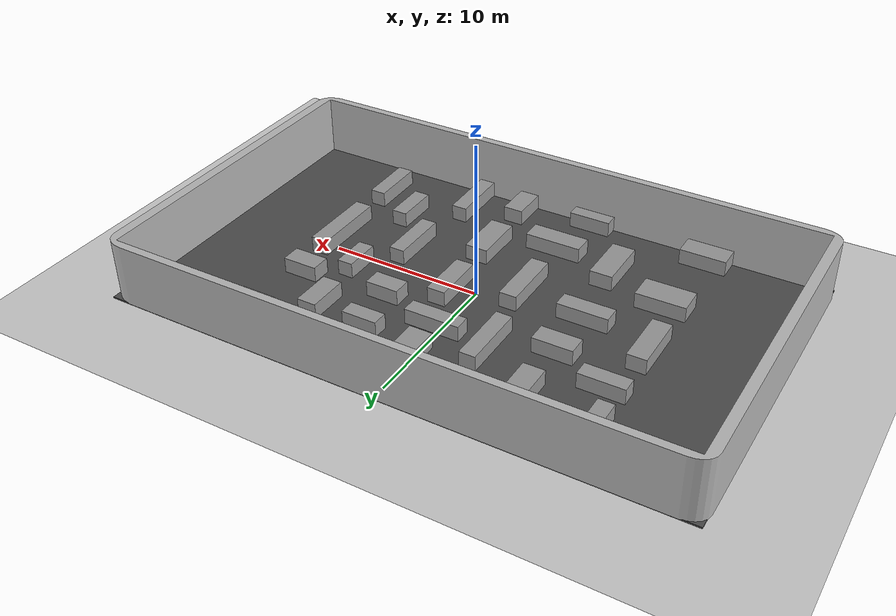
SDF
<sdf version="1.6">
 <world name="default">
  <light name="sun" type="directional">
   <cast_shadows>0</cast_shadows>
   <pose>0 0 100 0 -0 0</pose>
   <diffuse>0.8 0.8 0.8 1</diffuse>
   <specular>0.1 0.1 0.1 1</specular>
   <attenuation>
    <range>1000</range>
    <constant>0.9</constant>
    <linear>0.01</linear>
    <quadratic>0.001</quadratic>
   </attenuation>
   <direction>0 0 -1</direction>
  </light>
  <model name="ground_plane">
   <static>1</static>
   <link name="link">
    <collision name="collision">
     <geometry><plane><normal>0 0 1</normal><size>100 100</size></plane></geometry>
     <surface><friction><ode><mu>100</mu><mu2>50</mu2></ode></friction></surface>
    </collision>
    <visual name="visual">
     <cast_shadows>0</cast_shadows>
     <geometry><plane><normal>0 0 1</normal><size>100 100</size></plane></geometry>
     <material>
      <script><uri>file://media/materials/scripts/gazebo.material</uri><name>Gazebo/Grey</name></script>
     </material>
    </visual>
   </link>
  </model>
  <gravity>0 0 -9.8</gravity>
  <magnetic_field>6e-06 2.3e-05 -4.2e-05</magnetic_field>
  <atmosphere type="adiabatic"/>
  <physics name="default_physics" default="0" type="ode">
   <max_step_size>0.001</max_step_size>
   <real_time_factor>1</real_time_factor>
   <real_time_update_rate>1000</real_time_update_rate>
  </physics>
  <scene><ambient>0.4 0.4 0.4 1</ambient><background>0.7 0.7 0.7 1</background><shadows>1</shadows></scene>
  <spherical_coordinates>
   <surface_model>EARTH_WGS84</surface_model>
   <latitude_deg>0</latitude_deg>
   <longitude_deg>0</longitude_deg>
   <elevation>0</elevation>
   <heading_deg>0</heading_deg>
  </spherical_coordinates>
  <model name="asphalt_plane">
   <static>1</static>
   <link name="link">
    <collision name="collision"><geometry><box><size>37 22 0.1</size></box></geometry></collision>
    <visual name="visual">
     <cast_shadows>0</cast_shadows>
     <geometry><box><size>37 22 0.1</size></box></geometry>
     <material>
      <script>
       <uri>model://asphalt_plane/materials/scripts</uri>
       <uri>model://asphalt_plane/materials/textures</uri>
       <name>vrc/asphalt</name>
      </script>
     </material>
    </visual>
   </link>
   <pose>0.054655 0.000182 0 0 -0 0</pose>
  </model>
  <model name="yard_square">
   <pose>0 0 0 1.5708 -0 1.5708</pose>
   <static>1</static>
   <link name="body">
    <collision name="collision">
     <geometry><mesh><uri>model://yard_square/yard_square.stl</uri><scale>0.1 0.1 0.13</scale></mesh></geometry>
    </collision>
    <visual name="visual">
     <geometry><mesh><uri>model://yard_square/yard_square.stl</uri><scale>0.1 0.1 0.13</scale></mesh></geometry>
    </visual>
   </link>
  </model>
  <audio><device>default</device></audio>
  <model name="unit_box_0">
   <pose>-2.32374 -1.66092 0.550002 -8e-06 -0 4.5e-05</pose>
   <static>1</static>
   <link name="link">
    <inertial>
     <mass>1</mass>
     <inertia>
      <ixx>0.166667</ixx>
      <ixy>0</ixy>
      <ixz>0</ixz>
      <iyy>0.166667</iyy>
      <iyz>0</iyz>
      <izz>0.166667</izz>
     </inertia>
    </inertial>
    <collision name="collision"><geometry><box><size>1.12328 4.13675 1</size></box></geometry></collision>
    <visual name="visual">
     <geometry><box><size>1.12328 4.13675 1</size></box></geometry>
     <material>
      <script><name>Gazebo/Grey</name><uri>file://media/materials/scripts/gazebo.material</uri></script>
     </material>
    </visual>
   </link>
  </model>
  <model name="unit_box_2">
   <pose>0.26129 7.45255 0.549996 -7e-06 -0 0.001667</pose>
   <static>1</static>
   <link name="link">
    <inertial>
     <mass>1</mass>
     <inertia>
      <ixx>0.166667</ixx>
      <ixy>0</ixy>
      <ixz>0</ixz>
      <iyy>0.166667</iyy>
      <iyz>0</iyz>
      <izz>0.166667</izz>
     </inertia>
    </inertial>
    <collision name="collision"><geometry><box><size>1.4552 3.44615 1</size></box></geometry></collision>
    <visual name="visual">
     <geometry><box><size>1.4552 3.44615 1</size></box></geometry>
     <material>
      <script><name>Gazebo/Grey</name><uri>file://media/materials/scripts/gazebo.material</uri></script>
     </material>
    </visual>
   </link>
  </model>
  <model name="unit_box_3">
   <pose>3.96739 9.65811 0.549227 0 0.000383 -0.000473</pose>
   <static>1</static>
   <link name="link">
    <inertial>
     <mass>1</mass>
     <inertia>
      <ixx>0.166667</ixx>
      <ixy>0</ixy>
      <ixz>0</ixz>
      <iyy>0.166667</iyy>
      <iyz>0</iyz>
      <izz>0.166667</izz>
     </inertia>
    </inertial>
    <collision name="collision"><geometry><box><size>1.18061 2.38675 1</size></box></geometry></collision>
    <visual name="visual">
     <geometry><box><size>1.18061 2.38675 1</size></box></geometry>
     <material>
      <script><name>Gazebo/Grey</name><uri>file://media/materials/scripts/gazebo.material</uri></script>
     </material>
    </visual>
   </link>
  </model>
  <model name="unit_box_4">
   <pose>-10.2534 -4.3352 0.544487 0 -0 0.009696</pose>
   <static>1</static>
   <link name="link">
    <inertial>
     <mass>1</mass>
     <inertia>
      <ixx>0.166667</ixx>
      <ixy>0</ixy>
      <ixz>0</ixz>
      <iyy>0.166667</iyy>
      <iyz>0</iyz>
      <izz>0.166667</izz>
     </inertia>
    </inertial>
    <collision name="collision"><geometry><box><size>3.1937 1.73528 1</size></box></geometry></collision>
    <visual name="visual">
     <geometry><box><size>3.1937 1.73528 1</size></box></geometry>
     <material>
      <script><name>Gazebo/Grey</name><uri>file://media/materials/scripts/gazebo.material</uri></script>
     </material>
    </visual>
   </link>
  </model>
  <model name="unit_box_5">
   <pose>-2.02881 -6.62329 0.549982 0 1.7e-05 -1.57091</pose>
   <static>1</static>
   <link name="link">
    <inertial>
     <mass>1</mass>
     <inertia>
      <ixx>0.166667</ixx>
      <ixy>0</ixy>
      <ixz>0</ixz>
      <iyy>0.166667</iyy>
      <iyz>0</iyz>
      <izz>0.166667</izz>
     </inertia>
    </inertial>
    <collision name="collision"><geometry><box><size>1.31392 3.64155 1</size></box></geometry></collision>
    <visual name="visual">
     <geometry><box><size>1.31392 3.64155 1</size></box></geometry>
     <material>
      <script><name>Gazebo/Grey</name><uri>file://media/materials/scripts/gazebo.material</uri></script>
     </material>
    </visual>
   </link>
  </model>
  <model name="unit_box_9">
   <pose>0.354728 4.0596 0.549886 0 -7.9e-05 0.003843</pose>
   <static>1</static>
   <link name="link">
    <inertial>
     <mass>1</mass>
     <inertia>
      <ixx>0.166667</ixx>
      <ixy>0</ixy>
      <ixz>0</ixz>
      <iyy>0.166667</iyy>
      <iyz>0</iyz>
      <izz>0.166667</izz>
     </inertia>
    </inertial>
    <collision name="collision"><geometry><box><size>3.55853 1 1</size></box></geometry></collision>
    <visual name="visual">
     <geometry><box><size>3.55853 1 1</size></box></geometry>
     <material>
      <script><name>Gazebo/Grey</name><uri>file://media/materials/scripts/gazebo.material</uri></script>
     </material>
    </visual>
   </link>
  </model>
  <model name="unit_box_10">
   <pose>-6.78448 -0.825463 0.547399 -0.000838 0 0</pose>
   <static>1</static>
   <link name="link">
    <inertial>
     <mass>1</mass>
     <inertia>
      <ixx>0.166667</ixx>
      <ixy>0</ixy>
      <ixz>0</ixz>
      <iyy>0.166667</iyy>
      <iyz>0</iyz>
      <izz>0.166667</izz>
     </inertia>
    </inertial>
    <collision name="collision"><geometry><box><size>3.27683 1.11673 1</size></box></geometry></collision>
    <visual name="visual">
     <geometry><box><size>3.27683 1.11673 1</size></box></geometry>
     <material>
      <script><name>Gazebo/Grey</name><uri>file://media/materials/scripts/gazebo.material</uri></script>
     </material>
    </visual>
   </link>
  </model>
  <model name="unit_box_1">
   <pose>10.7176 -1.45544 0.550023 6e-06 -0 0.000254</pose>
   <static>1</static>
   <link name="link">
    <inertial>
     <mass>1</mass>
     <inertia>
      <ixx>0.166667</ixx>
      <ixy>0</ixy>
      <ixz>0</ixz>
      <iyy>0.166667</iyy>
      <iyz>0</iyz>
      <izz>0.166667</izz>
     </inertia>
    </inertial>
    <collision name="collision"><geometry><box><size>1.12056 4.92766 1</size></box></geometry></collision>
    <visual name="visual">
     <geometry><box><size>1.12056 4.92766 1</size></box></geometry>
     <material>
      <script><name>Gazebo/Grey</name><uri>file://media/materials/scripts/gazebo.material</uri></script>
     </material>
    </visual>
   </link>
  </model>
  <model name="unit_box_6">
   <pose>-3.06762 4.26919 0.549214 -0.00038 0 7.5e-05</pose>
   <static>1</static>
   <link name="link">
    <inertial>
     <mass>1</mass>
     <inertia>
      <ixx>0.166667</ixx>
      <ixy>0</ixy>
      <ixz>0</ixz>
      <iyy>0.166667</iyy>
      <iyz>0</iyz>
      <izz>0.166667</izz>
     </inertia>
    </inertial>
    <collision name="collision"><geometry><box><size>1.02781 4.24453 1</size></box></geometry></collision>
    <visual name="visual">
     <geometry><box><size>1.02781 4.24453 1</size></box></geometry>
     <material>
      <script><name>Gazebo/Grey</name><uri>file://media/materials/scripts/gazebo.material</uri></script>
     </material>
    </visual>
   </link>
  </model>
  <model name="unit_box_8">
   <pose>-6.12791 -5.95067 0.549084 0.00039 -0 0</pose>
   <static>1</static>
   <link name="link">
    <inertial>
     <mass>1</mass>
     <inertia>
      <ixx>0.166667</ixx>
      <ixy>0</ixy>
      <ixz>0</ixz>
      <iyy>0.166667</iyy>
      <iyz>0</iyz>
      <izz>0.166667</izz>
     </inertia>
    </inertial>
    <collision name="collision"><geometry><box><size>1.46752 3.42649 1</size></box></geometry></collision>
    <visual name="visual">
     <geometry><box><size>1.46752 3.42649 1</size></box></geometry>
     <material>
      <script><name>Gazebo/Grey</name><uri>file://media/materials/scripts/gazebo.material</uri></script>
     </material>
    </visual>
   </link>
  </model>
  <model name="unit_box_11">
   <pose>1.54344 0.372559 0.55279 0.00034 -0 0</pose>
   <static>1</static>
   <link name="link">
    <inertial>
     <mass>1</mass>
     <inertia>
      <ixx>0.166667</ixx>
      <ixy>0</ixy>
      <ixz>0</ixz>
      <iyy>0.166667</iyy>
      <iyz>0</iyz>
      <izz>0.166667</izz>
     </inertia>
    </inertial>
    <collision name="collision"><geometry><box><size>1.17874 3.42934 1</size></box></geometry></collision>
    <visual name="visual">
     <geometry><box><size>1.17874 3.42934 1</size></box></geometry>
     <material>
      <script><name>Gazebo/Grey</name><uri>file://media/materials/scripts/gazebo.material</uri></script>
     </material>
    </visual>
   </link>
  </model>
  <model name="unit_box_12">
   <pose>7.42769 5.48979 0.547927 -0.000766 0 0</pose>
   <static>1</static>
   <link name="link">
    <inertial>
     <mass>1</mass>
     <inertia>
      <ixx>0.166667</ixx>
      <ixy>0</ixy>
      <ixz>0</ixz>
      <iyy>0.166667</iyy>
      <iyz>0</iyz>
      <izz>0.166667</izz>
     </inertia>
    </inertial>
    <collision name="collision"><geometry><box><size>1.25351 2.6176 1</size></box></geometry></collision>
    <visual name="visual">
     <geometry><box><size>1.25351 2.6176 1</size></box></geometry>
     <material>
      <script><name>Gazebo/Grey</name><uri>file://media/materials/scripts/gazebo.material</uri></script>
     </material>
    </visual>
   </link>
  </model>
  <model name="unit_box_13">
   <pose>1.92941 -9.39136 0.549997 6e-06 -0 0.000172</pose>
   <static>1</static>
   <link name="link">
    <inertial>
     <mass>1</mass>
     <inertia>
      <ixx>0.166667</ixx>
      <ixy>0</ixy>
      <ixz>0</ixz>
      <iyy>0.166667</iyy>
      <iyz>0</iyz>
      <izz>0.166667</izz>
     </inertia>
    </inertial>
    <collision name="collision"><geometry><box><size>1.26783 2.46342 1</size></box></geometry></collision>
    <visual name="visual">
     <geometry><box><size>1.26783 2.46342 1</size></box></geometry>
     <material>
      <script><name>Gazebo/Grey</name><uri>file://media/materials/scripts/gazebo.material</uri></script>
     </material>
    </visual>
   </link>
  </model>
  <model name="unit_box_2_clone">
   <pose>-8.09503 10.0713 0.549998 -7e-06 -0 0.001667</pose>
   <static>1</static>
   <link name="link">
    <inertial>
     <mass>1</mass>
     <inertia>
      <ixx>0.166667</ixx>
      <ixy>0</ixy>
      <ixz>0</ixz>
      <iyy>0.166667</iyy>
      <iyz>0</iyz>
      <izz>0.166667</izz>
     </inertia>
    </inertial>
    <collision name="collision"><geometry><box><size>1.5 1 1</size></box></geometry></collision>
    <visual name="visual">
     <geometry><box><size>1.5 1 1</size></box></geometry>
     <material>
      <script><name>Gazebo/Grey</name><uri>file://media/materials/scripts/gazebo.material</uri></script>
     </material>
    </visual>
   </link>
  </model>
  <model name="unit_box_14">
   <pose>-11.158 0.193327 0.55 0 -0 0</pose>
   <static>1</static>
   <link name="link">
    <inertial>
     <mass>1</mass>
     <inertia>
      <ixx>0.166667</ixx>
      <ixy>0</ixy>
      <ixz>0</ixz>
      <iyy>0.166667</iyy>
      <iyz>0</iyz>
      <izz>0.166667</izz>
     </inertia>
    </inertial>
    <collision name="collision"><geometry><box><size>1.22641 3.68175 1</size></box></geometry></collision>
    <visual name="visual">
     <geometry><box><size>1.22641 3.68175 1</size></box></geometry>
     <material>
      <script><name>Gazebo/Grey</name><uri>file://media/materials/scripts/gazebo.material</uri></script>
     </material>
    </visual>
   </link>
  </model>
  <model name="unit_box_16">
   <pose>-11.2712 7.72064 0.549961 3.4e-05 -0 0</pose>
   <static>1</static>
   <link name="link">
    <inertial>
     <mass>1</mass>
     <inertia>
      <ixx>0.166667</ixx>
      <ixy>0</ixy>
      <ixz>0</ixz>
      <iyy>0.166667</iyy>
      <iyz>0</iyz>
      <izz>0.166667</izz>
     </inertia>
    </inertial>
    <collision name="collision"><geometry><box><size>1 3.13508 1</size></box></geometry></collision>
    <visual name="visual">
     <geometry><box><size>1 3.13508 1</size></box></geometry>
     <material>
      <script><name>Gazebo/Grey</name><uri>file://media/materials/scripts/gazebo.material</uri></script>
     </material>
    </visual>
   </link>
  </model>
  <model name="unit_box_17">
   <pose>-10.7177 -9.8351 0.549948 4.3e-05 0 -1e-06</pose>
   <static>1</static>
   <link name="link">
    <inertial>
     <mass>1</mass>
     <inertia>
      <ixx>0.166667</ixx>
      <ixy>0</ixy>
      <ixz>0</ixz>
      <iyy>0.166667</iyy>
      <iyz>0</iyz>
      <izz>0.166667</izz>
     </inertia>
    </inertial>
    <collision name="collision"><geometry><box><size>2.98242 1.49188 1</size></box></geometry></collision>
    <visual name="visual">
     <geometry><box><size>2.98242 1.49188 1</size></box></geometry>
     <material>
      <script><name>Gazebo/Grey</name><uri>file://media/materials/scripts/gazebo.material</uri></script>
     </material>
    </visual>
   </link>
  </model>
  <model name="unit_box_19">
   <pose>-2.83645 -10.1346 0.55 0 -0 0</pose>
   <static>1</static>
   <link name="link">
    <inertial>
     <mass>1</mass>
     <inertia>
      <ixx>0.166667</ixx>
      <ixy>0</ixy>
      <ixz>0</ixz>
      <iyy>0.166667</iyy>
      <iyz>0</iyz>
      <izz>0.166667</izz>
     </inertia>
    </inertial>
    <collision name="collision"><geometry><box><size>2.69644 1 1</size></box></geometry></collision>
    <visual name="visual">
     <geometry><box><size>2.69644 1 1</size></box></geometry>
     <material>
      <script><name>Gazebo/Grey</name><uri>file://media/materials/scripts/gazebo.material</uri></script>
     </material>
    </visual>
   </link>
  </model>
  <model name="unit_box">
   <pose>7.85767 1.15666 0.549958 3.6e-05 -0 0</pose>
   <static>1</static>
   <link name="link">
    <inertial>
     <mass>1</mass>
     <inertia>
      <ixx>0.166667</ixx>
      <ixy>0</ixy>
      <ixz>0</ixz>
      <iyy>0.166667</iyy>
      <iyz>0</iyz>
      <izz>0.166667</izz>
     </inertia>
    </inertial>
    <collision name="collision"><geometry><box><size>1 2.339 1</size></box></geometry></collision>
    <visual name="visual">
     <geometry><box><size>1 2.339 1</size></box></geometry>
     <material>
      <script><name>Gazebo/Grey</name><uri>file://media/materials/scripts/gazebo.material</uri></script>
     </material>
    </visual>
   </link>
  </model>
  <model name="unit_box_7">
   <pose>-10.3519 4.34763 0.549996 -9e-06 -0 0.000673</pose>
   <static>1</static>
   <link name="link">
    <inertial>
     <mass>1</mass>
     <inertia>
      <ixx>0.166667</ixx>
      <ixy>0</ixy>
      <ixz>0</ixz>
      <iyy>0.166667</iyy>
      <iyz>0</iyz>
      <izz>0.166667</izz>
     </inertia>
    </inertial>
    <collision name="collision"><geometry><box><size>2.89155 1 1</size></box></geometry></collision>
    <visual name="visual">
     <geometry><box><size>2.89155 1 1</size></box></geometry>
     <material>
      <script><name>Gazebo/Grey</name><uri>file://media/materials/scripts/gazebo.material</uri></script>
     </material>
    </visual>
   </link>
  </model>
  <model name="unit_box_15">
   <pose>-3.33649 9.52546 0.549986 1.4e-05 -0 -3.1e-05</pose>
   <static>1</static>
   <link name="link">
    <inertial>
     <mass>1</mass>
     <inertia>
      <ixx>0.166667</ixx>
      <ixy>0</ixy>
      <ixz>0</ixz>
      <iyy>0.166667</iyy>
      <iyz>0</iyz>
      <izz>0.166667</izz>
     </inertia>
    </inertial>
    <collision name="collision"><geometry><box><size>1.28707 1.98363 1</size></box></geometry></collision>
    <visual name="visual">
     <geometry><box><size>1.28707 1.98363 1</size></box></geometry>
     <material>
      <script><name>Gazebo/Grey</name><uri>file://media/materials/scripts/gazebo.material</uri></script>
     </material>
    </visual>
   </link>
  </model>
  <model name="unit_box_20">
   <pose>4.50871 2.7669 0.549995 -8e-06 -0 2.5e-05</pose>
   <static>1</static>
   <link name="link">
    <inertial>
     <mass>1</mass>
     <inertia>
      <ixx>0.166667</ixx>
      <ixy>0</ixy>
      <ixz>0</ixz>
      <iyy>0.166667</iyy>
      <iyz>0</iyz>
      <izz>0.166667</izz>
     </inertia>
    </inertial>
    <collision name="collision"><geometry><box><size>2.13783 1.1928 1</size></box></geometry></collision>
    <visual name="visual">
     <geometry><box><size>2.13783 1.1928 1</size></box></geometry>
     <material>
      <script><name>Gazebo/Grey</name><uri>file://media/materials/scripts/gazebo.material</uri></script>
     </material>
    </visual>
   </link>
  </model>
  <model name="unit_box_21">
   <pose>10.1667 3.15717 0.549995 -8e-06 0 7.4e-05</pose>
   <static>1</static>
   <link name="link">
    <inertial>
     <mass>1</mass>
     <inertia>
      <ixx>0.166667</ixx>
      <ixy>0</ixy>
      <ixz>0</ixz>
      <iyy>0.166667</iyy>
      <iyz>0</iyz>
      <izz>0.166667</izz>
     </inertia>
    </inertial>
    <collision name="collision"><geometry><box><size>2.25359 1.25074 1</size></box></geometry></collision>
    <visual name="visual">
     <geometry><box><size>2.25359 1.25074 1</size></box></geometry>
     <material>
      <script><name>Gazebo/Grey</name><uri>file://media/materials/scripts/gazebo.material</uri></script>
     </material>
    </visual>
   </link>
  </model>
  <model name="unit_box_22">
   <pose>10.447 7.84666 0.549959 0 3.5e-05 -1.6e-05</pose>
   <static>1</static>
   <link name="link">
    <inertial>
     <mass>1</mass>
     <inertia>
      <ixx>0.166667</ixx>
      <ixy>0</ixy>
      <ixz>0</ixz>
      <iyy>0.166667</iyy>
      <iyz>0</iyz>
      <izz>0.166667</izz>
     </inertia>
    </inertial>
    <collision name="collision"><geometry><box><size>2.33197 1 1</size></box></geometry></collision>
    <visual name="visual">
     <geometry><box><size>2.33197 1 1</size></box></geometry>
     <material>
      <script><name>Gazebo/Grey</name><uri>file://media/materials/scripts/gazebo.material</uri></script>
     </material>
    </visual>
   </link>
  </model>
  <model name="unit_box_23">
   <pose>-6.67934 2.69053 0.549928 0 5.7e-05 9e-06</pose>
   <static>1</static>
   <link name="link">
    <inertial>
     <mass>1</mass>
     <inertia>
      <ixx>0.166667</ixx>
      <ixy>0</ixy>
      <ixz>0</ixz>
      <iyy>0.166667</iyy>
      <iyz>0</iyz>
      <izz>0.166667</izz>
     </inertia>
    </inertial>
    <collision name="collision"><geometry><box><size>2.55838 1.25065 1</size></box></geometry></collision>
    <visual name="visual">
     <geometry><box><size>2.55838 1.25065 1</size></box></geometry>
     <material>
      <script><name>Gazebo/Grey</name><uri>file://media/materials/scripts/gazebo.material</uri></script>
     </material>
    </visual>
   </link>
  </model>
  <model name="unit_box_25">
   <pose>3.9738 6.01861 0.549995 -9e-06 0 -0.000135</pose>
   <static>1</static>
   <link name="link">
    <inertial>
     <mass>1</mass>
     <inertia>
      <ixx>0.166667</ixx>
      <ixy>0</ixy>
      <ixz>0</ixz>
      <iyy>0.166667</iyy>
      <iyz>0</iyz>
      <izz>0.166667</izz>
     </inertia>
    </inertial>
    <collision name="collision"><geometry><box><size>2.29351 1 1</size></box></geometry></collision>
    <visual name="visual">
     <geometry><box><size>2.29351 1 1</size></box></geometry>
     <material>
      <script><name>Gazebo/Grey</name><uri>file://media/materials/scripts/gazebo.material</uri></script>
     </material>
    </visual>
   </link>
  </model>
  <model name="unit_box_26">
   <pose>-6.72133 6.78654 0.55 0 -0 0.000713</pose>
   <static>1</static>
   <link name="link">
    <inertial>
     <mass>1</mass>
     <inertia>
      <ixx>0.166667</ixx>
      <ixy>0</ixy>
      <ixz>0</ixz>
      <iyy>0.166667</iyy>
      <iyz>0</iyz>
      <izz>0.166667</izz>
     </inertia>
    </inertial>
    <collision name="collision"><geometry><box><size>1.35161 2.61855 1</size></box></geometry></collision>
    <visual name="visual">
     <geometry><box><size>1.35161 2.61855 1</size></box></geometry>
     <material>
      <script><name>Gazebo/Grey</name><uri>file://media/materials/scripts/gazebo.material</uri></script>
     </material>
    </visual>
   </link>
  </model>
  <model name="unit_box_27">
   <pose>10.8107 -7.40652 0.549999 0 -2e-06 0.011011</pose>
   <static>1</static>
   <link name="link">
    <inertial>
     <mass>1</mass>
     <inertia>
      <ixx>0.166667</ixx>
      <ixy>0</ixy>
      <ixz>0</ixz>
      <iyy>0.166667</iyy>
      <iyz>0</iyz>
      <izz>0.166667</izz>
     </inertia>
    </inertial>
    <collision name="collision"><geometry><box><size>1 3.50494 1</size></box></geometry></collision>
    <visual name="visual">
     <geometry><box><size>1 3.50494 1</size></box></geometry>
     <material>
      <script><name>Gazebo/Grey</name><uri>file://media/materials/scripts/gazebo.material</uri></script>
     </material>
    </visual>
   </link>
  </model>
  <model name="unit_box_28">
   <pose>5.12018 -8.58686 0.55 0 -0 0.011497</pose>
   <static>1</static>
   <link name="link">
    <inertial>
     <mass>1</mass>
     <inertia>
      <ixx>0.166667</ixx>
      <ixy>0</ixy>
      <ixz>0</ixz>
      <iyy>0.166667</iyy>
      <iyz>0</iyz>
      <izz>0.166667</izz>
     </inertia>
    </inertial>
    <collision name="collision"><geometry><box><size>1 3.89988 1</size></box></geometry></collision>
    <visual name="visual">
     <geometry><box><size>1 3.89988 1</size></box></geometry>
     <material>
      <script><name>Gazebo/Grey</name><uri>file://media/materials/scripts/gazebo.material</uri></script>
     </material>
    </visual>
   </link>
  </model>
  <model name="unit_box_29">
   <pose>5.92114 -2.35816 0.549404 -0.000312 0 0</pose>
   <static>1</static>
   <link name="link">
    <inertial>
     <mass>1</mass>
     <inertia>
      <ixx>0.166667</ixx>
      <ixy>0</ixy>
      <ixz>0</ixz>
      <iyy>0.166667</iyy>
      <iyz>0</iyz>
      <izz>0.166667</izz>
     </inertia>
    </inertial>
    <collision name="collision"><geometry><box><size>1 3.8184 1</size></box></geometry></collision>
    <visual name="visual">
     <geometry><box><size>1 3.8184 1</size></box></geometry>
     <material>
      <script><name>Gazebo/Grey</name><uri>file://media/materials/scripts/gazebo.material</uri></script>
     </material>
    </visual>
   </link>
  </model>
  <model name="unit_box_30">
   <pose>8.15315 -5.58952 0.549885 8.3e-05 -0 -2e-06</pose>
   <static>1</static>
   <link name="link">
    <inertial>
     <mass>1</mass>
     <inertia>
      <ixx>0.166667</ixx>
      <ixy>0</ixy>
      <ixz>0</ixz>
      <iyy>0.166667</iyy>
      <iyz>0</iyz>
      <izz>0.166667</izz>
     </inertia>
    </inertial>
    <collision name="collision"><geometry><box><size>1 2.77429 1</size></box></geometry></collision>
    <visual name="visual">
     <geometry><box><size>1 2.77429 1</size></box></geometry>
     <material>
      <script><name>Gazebo/Grey</name><uri>file://media/materials/scripts/gazebo.material</uri></script>
     </material>
    </visual>
   </link>
  </model>
  <model name="unit_box_31">
   <pose>1.74169 -4.68003 0.55 0 -0 9e-05</pose>
   <static>1</static>
   <link name="link">
    <inertial>
     <mass>1</mass>
     <inertia>
      <ixx>0.166667</ixx>
      <ixy>0</ixy>
      <ixz>0</ixz>
      <iyy>0.166667</iyy>
      <iyz>0</iyz>
      <izz>0.166667</izz>
     </inertia>
    </inertial>
    <collision name="collision"><geometry><box><size>1.46472 3.34285 1</size></box></geometry></collision>
    <visual name="visual">
     <geometry><box><size>1.46472 3.34285 1</size></box></geometry>
     <material>
      <script><name>Gazebo/Grey</name><uri>file://media/materials/scripts/gazebo.material</uri></script>
     </material>
    </visual>
   </link>
  </model>
 </world>
</sdf>
